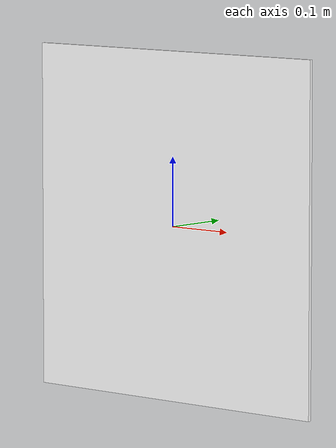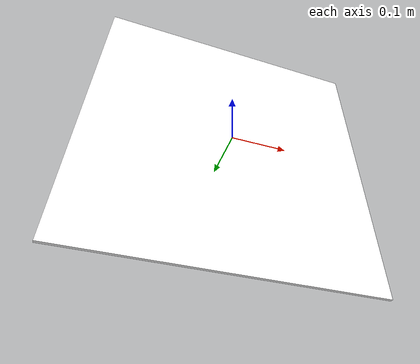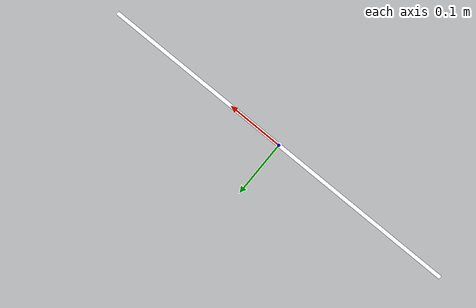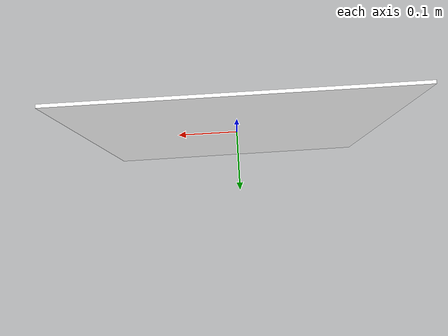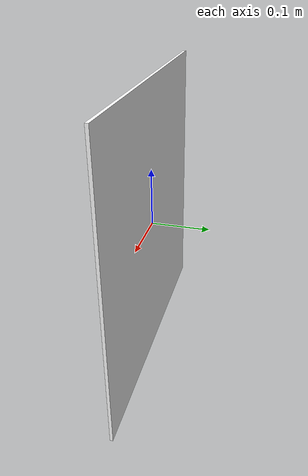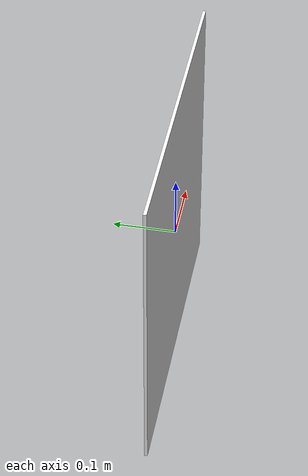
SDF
<?xml version="1.0"?>
<sdf version="1.9">
  <model name="aruco_marker_15">
    <static>true</static>
    <link name="link">
      <visual name="visual">
        <geometry>
          <box><size>0.5 0.005 0.5</size></box>
        </geometry>
        <material>
          <ambient>1 1 1 1</ambient>
          <diffuse>1 1 1 1</diffuse>
          <specular>0 0 0 1</specular>
          <pbr>
            <metal>
              <albedo_map>model://aruco_marker_15/materials/textures/aruco_15.png</albedo_map>
              <metalness>0.0</metalness>
              <roughness>1.0</roughness>
            </metal>
          </pbr>
        </material>
      </visual>
      <collision name="collision">
        <geometry>
          <box><size>0.5 0.005 0.5</size></box>
        </geometry>
      </collision>
    </link>
  </model>
</sdf>
